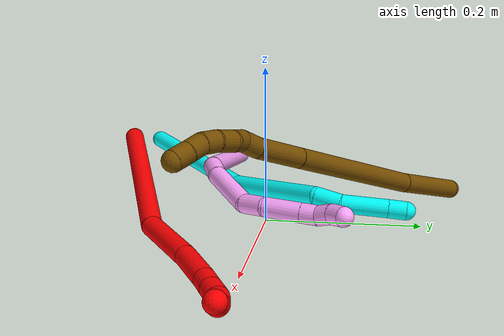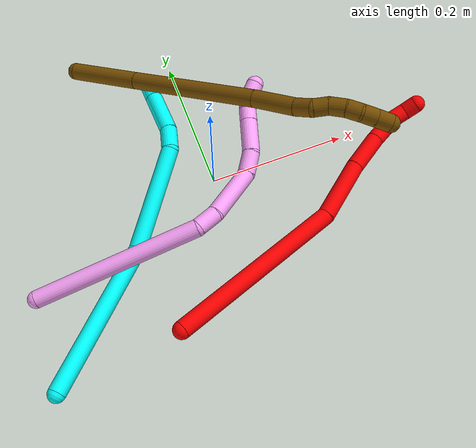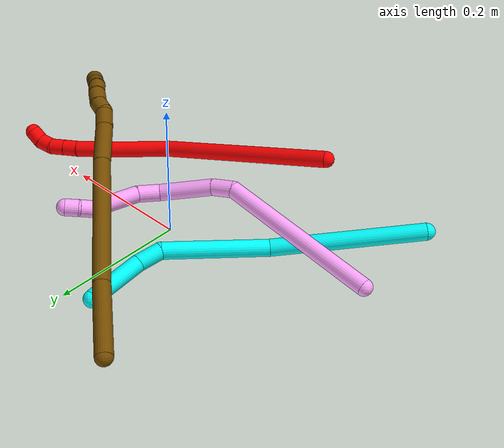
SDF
<sdf version="1.7">
 <world name="default">
  <model name="2">
   <static>0</static>
   <link name="2">
    <collision name="collision-cylinder-e_1_1_4">
     <pose>0.065254 0.098574 -0.057438 -2.09839 0.519549 -0.866362</pose>
     <geometry><cylinder><radius>0.0125</radius><length>0.262861</length></cylinder></geometry>
     <surface>
      <friction><ode><mu>1.16</mu><mu2>1.16</mu2><slip1>0</slip1><slip2>0</slip2></ode></friction>
      <contact><ode><kp>1e+06</kp><kd>1</kd><max_vel>0</max_vel><min_depth>0.001</min_depth></ode></contact>
     </surface>
    </collision>
    <visual name="visual-cylinder-e_1_1_4">
     <pose>0.065254 0.098574 -0.057438 -2.09839 0.519549 -0.866362</pose>
     <geometry><cylinder><radius>0.0125</radius><length>0.262861</length></cylinder></geometry>
     <material><ambient>1 0 0 1</ambient></material>
    </visual>
    <collision name="collision-cylinder-e_2_4_5">
     <pose>0.148873 0.224107 -0.147189 -2.44626 0.411507 -1.04506</pose>
     <geometry><cylinder><radius>0.0125</radius><length>0.091833</length></cylinder></geometry>
     <surface>
      <friction><ode><mu>1.16</mu><mu2>1.16</mu2><slip1>0</slip1><slip2>0</slip2></ode></friction>
      <contact><ode><kp>1e+06</kp><kd>1</kd><max_vel>0</max_vel><min_depth>0.001</min_depth></ode></contact>
     </surface>
    </collision>
    <visual name="visual-cylinder-e_2_4_5">
     <pose>0.148873 0.224107 -0.147189 -2.44626 0.411507 -1.04506</pose>
     <geometry><cylinder><radius>0.0125</radius><length>0.091833</length></cylinder></geometry>
     <material><ambient>1 0 0 1</ambient></material>
    </visual>
    <collision name="collision-cylinder-e_3_5_6">
     <pose>0.179117 0.269653 -0.197678 -2.34503 0.428594 -0.954695</pose>
     <geometry><cylinder><radius>0.0125</radius><length>0.057162</length></cylinder></geometry>
     <surface>
      <friction><ode><mu>1.16</mu><mu2>1.16</mu2><slip1>0</slip1><slip2>0</slip2></ode></friction>
      <contact><ode><kp>1e+06</kp><kd>1</kd><max_vel>0</max_vel><min_depth>0.001</min_depth></ode></contact>
     </surface>
    </collision>
    <visual name="visual-cylinder-e_3_5_6">
     <pose>0.179117 0.269653 -0.197678 -2.34503 0.428594 -0.954695</pose>
     <geometry><cylinder><radius>0.0125</radius><length>0.057162</length></cylinder></geometry>
     <material><ambient>1 0 0 1</ambient></material>
    </visual>
    <collision name="collision-cylinder-e_4_6_7">
     <pose>0.195397 0.296234 -0.222456 -2.26111 0.401475 -0.815474</pose>
     <geometry><cylinder><radius>0.0125</radius><length>0.02253</length></cylinder></geometry>
     <surface>
      <friction><ode><mu>1.16</mu><mu2>1.16</mu2><slip1>0</slip1><slip2>0</slip2></ode></friction>
      <contact><ode><kp>1e+06</kp><kd>1</kd><max_vel>0</max_vel><min_depth>0.001</min_depth></ode></contact>
     </surface>
    </collision>
    <visual name="visual-cylinder-e_4_6_7">
     <pose>0.195397 0.296234 -0.222456 -2.26111 0.401475 -0.815474</pose>
     <geometry><cylinder><radius>0.0125</radius><length>0.02253</length></cylinder></geometry>
     <material><ambient>1 0 0 1</ambient></material>
    </visual>
    <collision name="collision-cylinder-e_5_7_8">
     <pose>0.204205 0.312219 -0.235958 -2.28309 0.395393 -0.825046</pose>
     <geometry><cylinder><radius>0.0125</radius><length>0.022878</length></cylinder></geometry>
     <surface>
      <friction><ode><mu>1.16</mu><mu2>1.16</mu2><slip1>0</slip1><slip2>0</slip2></ode></friction>
      <contact><ode><kp>1e+06</kp><kd>1</kd><max_vel>0</max_vel><min_depth>0.001</min_depth></ode></contact>
     </surface>
    </collision>
    <visual name="visual-cylinder-e_5_7_8">
     <pose>0.204205 0.312219 -0.235958 -2.28309 0.395393 -0.825046</pose>
     <geometry><cylinder><radius>0.0125</radius><length>0.022878</length></cylinder></geometry>
     <material><ambient>1 0 0 1</ambient></material>
    </visual>
    <collision name="collision-cylinder-e_6_8_9">
     <pose>0.211013 0.330186 -0.246814 -1.9483 0.220173 -0.322641</pose>
     <geometry><cylinder><radius>0.0125</radius><length>0.021998</length></cylinder></geometry>
     <surface>
      <friction><ode><mu>1.16</mu><mu2>1.16</mu2><slip1>0</slip1><slip2>0</slip2></ode></friction>
      <contact><ode><kp>1e+06</kp><kd>1</kd><max_vel>0</max_vel><min_depth>0.001</min_depth></ode></contact>
     </surface>
    </collision>
    <visual name="visual-cylinder-e_6_8_9">
     <pose>0.211013 0.330186 -0.246814 -1.9483 0.220173 -0.322641</pose>
     <geometry><cylinder><radius>0.0125</radius><length>0.021998</length></cylinder></geometry>
     <material><ambient>1 0 0 1</ambient></material>
    </visual>
    <collision name="collision-cylinder-e_7_9_2">
     <pose>0.211063 0.349819 -0.253734 -1.8686 -0.228797 0.308446</pose>
     <geometry><cylinder><radius>0.0125</radius><length>0.02074</length></cylinder></geometry>
     <surface>
      <friction><ode><mu>1.16</mu><mu2>1.16</mu2><slip1>0</slip1><slip2>0</slip2></ode></friction>
      <contact><ode><kp>1e+06</kp><kd>1</kd><max_vel>0</max_vel><min_depth>0.001</min_depth></ode></contact>
     </surface>
    </collision>
    <visual name="visual-cylinder-e_7_9_2">
     <pose>0.211063 0.349819 -0.253734 -1.8686 -0.228797 0.308446</pose>
     <geometry><cylinder><radius>0.0125</radius><length>0.02074</length></cylinder></geometry>
     <material><ambient>1 0 0 1</ambient></material>
    </visual>
    <collision name="collision-sphere-2">
     <pose>0.208711 0.359474 -0.256697 0 -0 0</pose>
     <geometry><sphere><radius>0.0125</radius></sphere></geometry>
     <surface>
      <friction><ode><mu>1.16</mu><mu2>1.16</mu2><slip1>0</slip1><slip2>0</slip2></ode></friction>
      <contact><ode><kp>1e+06</kp><kd>1</kd><max_vel>0</max_vel><min_depth>0.001</min_depth></ode></contact>
     </surface>
    </collision>
    <visual name="visual-sphere-2">
     <pose>0.208711 0.359474 -0.256697 0 -0 0</pose>
     <geometry><sphere><radius>0.0125</radius></sphere></geometry>
     <material><ambient>1 0 0 1</ambient></material>
    </visual>
    <collision name="collision-sphere-9">
     <pose>0.213415 0.340163 -0.25077 0 -0 0</pose>
     <geometry><sphere><radius>0.0125</radius></sphere></geometry>
     <surface>
      <friction><ode><mu>1.16</mu><mu2>1.16</mu2><slip1>0</slip1><slip2>0</slip2></ode></friction>
      <contact><ode><kp>1e+06</kp><kd>1</kd><max_vel>0</max_vel><min_depth>0.001</min_depth></ode></contact>
     </surface>
    </collision>
    <visual name="visual-sphere-9">
     <pose>0.213415 0.340163 -0.25077 0 -0 0</pose>
     <geometry><sphere><radius>0.0125</radius></sphere></geometry>
     <material><ambient>1 0 0 1</ambient></material>
    </visual>
    <collision name="collision-sphere-4">
     <pose>0.130507 0.197147 -0.114876 0 -0 0</pose>
     <geometry><sphere><radius>0.0125</radius></sphere></geometry>
     <surface>
      <friction><ode><mu>1.16</mu><mu2>1.16</mu2><slip1>0</slip1><slip2>0</slip2></ode></friction>
      <contact><ode><kp>1e+06</kp><kd>1</kd><max_vel>0</max_vel><min_depth>0.001</min_depth></ode></contact>
     </surface>
    </collision>
    <visual name="visual-sphere-4">
     <pose>0.130507 0.197147 -0.114876 0 -0 0</pose>
     <geometry><sphere><radius>0.0125</radius></sphere></geometry>
     <material><ambient>1 0 0 1</ambient></material>
    </visual>
    <collision name="collision-sphere-1">
     <geometry><sphere><radius>0.0125</radius></sphere></geometry>
     <surface>
      <friction><ode><mu>1.16</mu><mu2>1.16</mu2><slip1>0</slip1><slip2>0</slip2></ode></friction>
      <contact><ode><kp>1e+06</kp><kd>1</kd><max_vel>0</max_vel><min_depth>0.001</min_depth></ode></contact>
     </surface>
    </collision>
    <visual name="visual-sphere-1">
     <geometry><sphere><radius>0.0125</radius></sphere></geometry>
     <material><ambient>1 0 0 1</ambient></material>
    </visual>
    <collision name="collision-sphere-8">
     <pose>0.208611 0.320208 -0.242858 0 -0 0</pose>
     <geometry><sphere><radius>0.0125</radius></sphere></geometry>
     <surface>
      <friction><ode><mu>1.16</mu><mu2>1.16</mu2><slip1>0</slip1><slip2>0</slip2></ode></friction>
      <contact><ode><kp>1e+06</kp><kd>1</kd><max_vel>0</max_vel><min_depth>0.001</min_depth></ode></contact>
     </surface>
    </collision>
    <visual name="visual-sphere-8">
     <pose>0.208611 0.320208 -0.242858 0 -0 0</pose>
     <geometry><sphere><radius>0.0125</radius></sphere></geometry>
     <material><ambient>1 0 0 1</ambient></material>
    </visual>
    <collision name="collision-sphere-5">
     <pose>0.167239 0.251067 -0.179503 0 -0 0</pose>
     <geometry><sphere><radius>0.0125</radius></sphere></geometry>
     <surface>
      <friction><ode><mu>1.16</mu><mu2>1.16</mu2><slip1>0</slip1><slip2>0</slip2></ode></friction>
      <contact><ode><kp>1e+06</kp><kd>1</kd><max_vel>0</max_vel><min_depth>0.001</min_depth></ode></contact>
     </surface>
    </collision>
    <visual name="visual-sphere-5">
     <pose>0.167239 0.251067 -0.179503 0 -0 0</pose>
     <geometry><sphere><radius>0.0125</radius></sphere></geometry>
     <material><ambient>1 0 0 1</ambient></material>
    </visual>
    <collision name="collision-sphere-6">
     <pose>0.190995 0.288239 -0.215854 0 -0 0</pose>
     <geometry><sphere><radius>0.0125</radius></sphere></geometry>
     <surface>
      <friction><ode><mu>1.16</mu><mu2>1.16</mu2><slip1>0</slip1><slip2>0</slip2></ode></friction>
      <contact><ode><kp>1e+06</kp><kd>1</kd><max_vel>0</max_vel><min_depth>0.001</min_depth></ode></contact>
     </surface>
    </collision>
    <visual name="visual-sphere-6">
     <pose>0.190995 0.288239 -0.215854 0 -0 0</pose>
     <geometry><sphere><radius>0.0125</radius></sphere></geometry>
     <material><ambient>1 0 0 1</ambient></material>
    </visual>
    <collision name="collision-sphere-7">
     <pose>0.199799 0.304229 -0.229059 0 -0 0</pose>
     <geometry><sphere><radius>0.0125</radius></sphere></geometry>
     <surface>
      <friction><ode><mu>1.16</mu><mu2>1.16</mu2><slip1>0</slip1><slip2>0</slip2></ode></friction>
      <contact><ode><kp>1e+06</kp><kd>1</kd><max_vel>0</max_vel><min_depth>0.001</min_depth></ode></contact>
     </surface>
    </collision>
    <visual name="visual-sphere-7">
     <pose>0.199799 0.304229 -0.229059 0 -0 0</pose>
     <geometry><sphere><radius>0.0125</radius></sphere></geometry>
     <material><ambient>1 0 0 1</ambient></material>
    </visual>
    <inertial>
     <pose>0.118312 0.180482 -0.122033 0 -0 0</pose>
     <mass>0.5</mass>
     <inertia>
      <ixx>-0.000159</ixx>
      <ixy>0</ixy>
      <ixz>0</ixz>
      <iyy>-0.001064</iyy>
      <iyz>0</iyz>
      <izz>-0.002013</izz>
     </inertia>
    </inertial>
   </link>
   <pose>-0.116721 -0.208303 0.078136 2.24653 1.23374 0.493743</pose>
  </model>
  <model name="3">
   <static>0</static>
   <link name="3">
    <collision name="collision-cylinder-e_1_1_4">
     <pose>-0.010333 0.005504 -0.11041 -3.09178 -0.093197 2.16032</pose>
     <geometry><cylinder><radius>0.0125</radius><length>0.222058</length></cylinder></geometry>
     <surface>
      <friction><ode><mu>1.16</mu><mu2>1.16</mu2><slip1>0</slip1><slip2>0</slip2></ode></friction>
      <contact><ode><kp>1e+06</kp><kd>1</kd><max_vel>0</max_vel><min_depth>0.001</min_depth></ode></contact>
     </surface>
    </collision>
    <visual name="visual-cylinder-e_1_1_4">
     <pose>-0.010333 0.005504 -0.11041 -3.09178 -0.093197 2.16032</pose>
     <geometry><cylinder><radius>0.0125</radius><length>0.222058</length></cylinder></geometry>
     <material><ambient>0.003922 1 0.996078 1</ambient></material>
    </visual>
    <collision name="collision-cylinder-e_2_4_5">
     <pose>-0.00787 0.016282 -0.297161 -3.07263 0.165671 -2.35402</pose>
     <geometry><cylinder><radius>0.0125</radius><length>0.155169</length></cylinder></geometry>
     <surface>
      <friction><ode><mu>1.16</mu><mu2>1.16</mu2><slip1>0</slip1><slip2>0</slip2></ode></friction>
      <contact><ode><kp>1e+06</kp><kd>1</kd><max_vel>0</max_vel><min_depth>0.001</min_depth></ode></contact>
     </surface>
    </collision>
    <visual name="visual-cylinder-e_2_4_5">
     <pose>-0.00787 0.016282 -0.297161 -3.07263 0.165671 -2.35402</pose>
     <geometry><cylinder><radius>0.0125</radius><length>0.155169</length></cylinder></geometry>
     <material><ambient>0.003922 1 0.996078 1</ambient></material>
    </visual>
    <collision name="collision-cylinder-e_3_5_6">
     <pose>0.006607 0.031139 -0.388984 -2.5873 0.092164 -0.321422</pose>
     <geometry><cylinder><radius>0.0125</radius><length>0.036575</length></cylinder></geometry>
     <surface>
      <friction><ode><mu>1.16</mu><mu2>1.16</mu2><slip1>0</slip1><slip2>0</slip2></ode></friction>
      <contact><ode><kp>1e+06</kp><kd>1</kd><max_vel>0</max_vel><min_depth>0.001</min_depth></ode></contact>
     </surface>
    </collision>
    <visual name="visual-cylinder-e_3_5_6">
     <pose>0.006607 0.031139 -0.388984 -2.5873 0.092164 -0.321422</pose>
     <geometry><cylinder><radius>0.0125</radius><length>0.036575</length></cylinder></geometry>
     <material><ambient>0.003922 1 0.996078 1</ambient></material>
    </visual>
    <collision name="collision-cylinder-e_4_6_7">
     <pose>0.017482 0.061595 -0.425555 -2.36135 0.300431 -0.70539</pose>
     <geometry><cylinder><radius>0.0125</radius><length>0.062121</length></cylinder></geometry>
     <surface>
      <friction><ode><mu>1.16</mu><mu2>1.16</mu2><slip1>0</slip1><slip2>0</slip2></ode></friction>
      <contact><ode><kp>1e+06</kp><kd>1</kd><max_vel>0</max_vel><min_depth>0.001</min_depth></ode></contact>
     </surface>
    </collision>
    <visual name="visual-cylinder-e_4_6_7">
     <pose>0.017482 0.061595 -0.425555 -2.36135 0.300431 -0.70539</pose>
     <geometry><cylinder><radius>0.0125</radius><length>0.062121</length></cylinder></geometry>
     <material><ambient>0.003922 1 0.996078 1</ambient></material>
    </visual>
    <collision name="collision-cylinder-e_5_7_2">
     <pose>0.030039 0.090591 -0.454863 -2.36202 0.283255 -0.668143</pose>
     <geometry><cylinder><radius>0.0125</radius><length>0.024077</length></cylinder></geometry>
     <surface>
      <friction><ode><mu>1.16</mu><mu2>1.16</mu2><slip1>0</slip1><slip2>0</slip2></ode></friction>
      <contact><ode><kp>1e+06</kp><kd>1</kd><max_vel>0</max_vel><min_depth>0.001</min_depth></ode></contact>
     </surface>
    </collision>
    <visual name="visual-cylinder-e_5_7_2">
     <pose>0.030039 0.090591 -0.454863 -2.36202 0.283255 -0.668143</pose>
     <geometry><cylinder><radius>0.0125</radius><length>0.024077</length></cylinder></geometry>
     <material><ambient>0.003922 1 0.996078 1</ambient></material>
    </visual>
    <collision name="collision-sphere-2">
     <pose>0.033403 0.098717 -0.463084 0 -0 0</pose>
     <geometry><sphere><radius>0.0125</radius></sphere></geometry>
     <surface>
      <friction><ode><mu>1.16</mu><mu2>1.16</mu2><slip1>0</slip1><slip2>0</slip2></ode></friction>
      <contact><ode><kp>1e+06</kp><kd>1</kd><max_vel>0</max_vel><min_depth>0.001</min_depth></ode></contact>
     </surface>
    </collision>
    <visual name="visual-sphere-2">
     <pose>0.033403 0.098717 -0.463084 0 -0 0</pose>
     <geometry><sphere><radius>0.0125</radius></sphere></geometry>
     <material><ambient>0.003922 1 0.996078 1</ambient></material>
    </visual>
    <collision name="collision-sphere-7">
     <pose>0.026674 0.082466 -0.446642 0 -0 0</pose>
     <geometry><sphere><radius>0.0125</radius></sphere></geometry>
     <surface>
      <friction><ode><mu>1.16</mu><mu2>1.16</mu2><slip1>0</slip1><slip2>0</slip2></ode></friction>
      <contact><ode><kp>1e+06</kp><kd>1</kd><max_vel>0</max_vel><min_depth>0.001</min_depth></ode></contact>
     </surface>
    </collision>
    <visual name="visual-sphere-7">
     <pose>0.026674 0.082466 -0.446642 0 -0 0</pose>
     <geometry><sphere><radius>0.0125</radius></sphere></geometry>
     <material><ambient>0.003922 1 0.996078 1</ambient></material>
    </visual>
    <collision name="collision-sphere-6">
     <pose>0.008291 0.040724 -0.404468 0 -0 0</pose>
     <geometry><sphere><radius>0.0125</radius></sphere></geometry>
     <surface>
      <friction><ode><mu>1.16</mu><mu2>1.16</mu2><slip1>0</slip1><slip2>0</slip2></ode></friction>
      <contact><ode><kp>1e+06</kp><kd>1</kd><max_vel>0</max_vel><min_depth>0.001</min_depth></ode></contact>
     </surface>
    </collision>
    <visual name="visual-sphere-6">
     <pose>0.008291 0.040724 -0.404468 0 -0 0</pose>
     <geometry><sphere><radius>0.0125</radius></sphere></geometry>
     <material><ambient>0.003922 1 0.996078 1</ambient></material>
    </visual>
    <collision name="collision-sphere-5">
     <pose>0.004924 0.021555 -0.373501 0 -0 0</pose>
     <geometry><sphere><radius>0.0125</radius></sphere></geometry>
     <surface>
      <friction><ode><mu>1.16</mu><mu2>1.16</mu2><slip1>0</slip1><slip2>0</slip2></ode></friction>
      <contact><ode><kp>1e+06</kp><kd>1</kd><max_vel>0</max_vel><min_depth>0.001</min_depth></ode></contact>
     </surface>
    </collision>
    <visual name="visual-sphere-5">
     <pose>0.004924 0.021555 -0.373501 0 -0 0</pose>
     <geometry><sphere><radius>0.0125</radius></sphere></geometry>
     <material><ambient>0.003922 1 0.996078 1</ambient></material>
    </visual>
    <collision name="collision-sphere-1">
     <geometry><sphere><radius>0.0125</radius></sphere></geometry>
     <surface>
      <friction><ode><mu>1.16</mu><mu2>1.16</mu2><slip1>0</slip1><slip2>0</slip2></ode></friction>
      <contact><ode><kp>1e+06</kp><kd>1</kd><max_vel>0</max_vel><min_depth>0.001</min_depth></ode></contact>
     </surface>
    </collision>
    <visual name="visual-sphere-1">
     <geometry><sphere><radius>0.0125</radius></sphere></geometry>
     <material><ambient>0.003922 1 0.996078 1</ambient></material>
    </visual>
    <collision name="collision-sphere-4">
     <pose>-0.020665 0.011009 -0.22082 0 -0 0</pose>
     <geometry><sphere><radius>0.0125</radius></sphere></geometry>
     <surface>
      <friction><ode><mu>1.16</mu><mu2>1.16</mu2><slip1>0</slip1><slip2>0</slip2></ode></friction>
      <contact><ode><kp>1e+06</kp><kd>1</kd><max_vel>0</max_vel><min_depth>0.001</min_depth></ode></contact>
     </surface>
    </collision>
    <visual name="visual-sphere-4">
     <pose>-0.020665 0.011009 -0.22082 0 -0 0</pose>
     <geometry><sphere><radius>0.0125</radius></sphere></geometry>
     <material><ambient>0.003922 1 0.996078 1</ambient></material>
    </visual>
    <inertial>
     <pose>-0.002929 0.02179 -0.244484 0 -0 0</pose>
     <mass>0.5</mass>
     <inertia>
      <ixx>-0.000181</ixx>
      <ixy>0</ixy>
      <ixz>0</ixz>
      <iyy>0.001258</iyy>
      <iyz>0</iyz>
      <izz>-9.7e-05</izz>
     </inertia>
    </inertial>
   </link>
   <pose>-0.292499 -0.2192 0.033283 -1.54518 -1.05446 2.33849</pose>
  </model>
  <model name="4">
   <static>0</static>
   <link name="4">
    <collision name="collision-cylinder-e_1_1_4">
     <pose>0.086852 0.013833 0.08241 -0.166301 0.804699 -0.070906</pose>
     <geometry><cylinder><radius>0.0125</radius><length>0.241049</length></cylinder></geometry>
     <surface>
      <friction><ode><mu>1.16</mu><mu2>1.16</mu2><slip1>0</slip1><slip2>0</slip2></ode></friction>
      <contact><ode><kp>1e+06</kp><kd>1</kd><max_vel>0</max_vel><min_depth>0.001</min_depth></ode></contact>
     </surface>
    </collision>
    <visual name="visual-cylinder-e_1_1_4">
     <pose>0.086852 0.013833 0.08241 -0.166301 0.804699 -0.070906</pose>
     <geometry><cylinder><radius>0.0125</radius><length>0.241049</length></cylinder></geometry>
     <material><ambient>1 0.65098 0.996078 1</ambient></material>
    </visual>
    <collision name="collision-cylinder-e_2_4_5">
     <pose>0.1894 0.028433 0.169299 -0.169786 1.28897 -0.127735</pose>
     <geometry><cylinder><radius>0.0125</radius><length>0.032679</length></cylinder></geometry>
     <surface>
      <friction><ode><mu>1.16</mu><mu2>1.16</mu2><slip1>0</slip1><slip2>0</slip2></ode></friction>
      <contact><ode><kp>1e+06</kp><kd>1</kd><max_vel>0</max_vel><min_depth>0.001</min_depth></ode></contact>
     </surface>
    </collision>
    <visual name="visual-cylinder-e_2_4_5">
     <pose>0.1894 0.028433 0.169299 -0.169786 1.28897 -0.127735</pose>
     <geometry><cylinder><radius>0.0125</radius><length>0.032679</length></cylinder></geometry>
     <material><ambient>1 0.65098 0.996078 1</ambient></material>
    </visual>
    <collision name="collision-cylinder-e_3_5_6">
     <pose>0.245219 0.033088 0.174517 -1.38279 1.4725 -1.2871</pose>
     <geometry><cylinder><radius>0.0125</radius><length>0.080638</length></cylinder></geometry>
     <surface>
      <friction><ode><mu>1.16</mu><mu2>1.16</mu2><slip1>0</slip1><slip2>0</slip2></ode></friction>
      <contact><ode><kp>1e+06</kp><kd>1</kd><max_vel>0</max_vel><min_depth>0.001</min_depth></ode></contact>
     </surface>
    </collision>
    <visual name="visual-cylinder-e_3_5_6">
     <pose>0.245219 0.033088 0.174517 -1.38279 1.4725 -1.2871</pose>
     <geometry><cylinder><radius>0.0125</radius><length>0.080638</length></cylinder></geometry>
     <material><ambient>1 0.65098 0.996078 1</ambient></material>
    </visual>
    <collision name="collision-cylinder-e_4_6_7">
     <pose>0.299981 0.045377 0.172518 -1.88592 1.02764 -1.32186</pose>
     <geometry><cylinder><radius>0.0125</radius><length>0.034196</length></cylinder></geometry>
     <surface>
      <friction><ode><mu>1.16</mu><mu2>1.16</mu2><slip1>0</slip1><slip2>0</slip2></ode></friction>
      <contact><ode><kp>1e+06</kp><kd>1</kd><max_vel>0</max_vel><min_depth>0.001</min_depth></ode></contact>
     </surface>
    </collision>
    <visual name="visual-cylinder-e_4_6_7">
     <pose>0.299981 0.045377 0.172518 -1.88592 1.02764 -1.32186</pose>
     <geometry><cylinder><radius>0.0125</radius><length>0.034196</length></cylinder></geometry>
     <material><ambient>1 0.65098 0.996078 1</ambient></material>
    </visual>
    <collision name="collision-cylinder-e_5_7_8">
     <pose>0.333522 0.065913 0.158742 -2.30888 0.856129 -1.60212</pose>
     <geometry><cylinder><radius>0.0125</radius><length>0.050057</length></cylinder></geometry>
     <surface>
      <friction><ode><mu>1.16</mu><mu2>1.16</mu2><slip1>0</slip1><slip2>0</slip2></ode></friction>
      <contact><ode><kp>1e+06</kp><kd>1</kd><max_vel>0</max_vel><min_depth>0.001</min_depth></ode></contact>
     </surface>
    </collision>
    <visual name="visual-cylinder-e_5_7_8">
     <pose>0.333522 0.065913 0.158742 -2.30888 0.856129 -1.60212</pose>
     <geometry><cylinder><radius>0.0125</radius><length>0.050057</length></cylinder></geometry>
     <material><ambient>1 0.65098 0.996078 1</ambient></material>
    </visual>
    <collision name="collision-cylinder-e_6_8_9">
     <pose>0.360367 0.083129 0.143048 -2.31259 0.855965 -1.60691</pose>
     <geometry><cylinder><radius>0.0125</radius><length>0.021029</length></cylinder></geometry>
     <surface>
      <friction><ode><mu>1.16</mu><mu2>1.16</mu2><slip1>0</slip1><slip2>0</slip2></ode></friction>
      <contact><ode><kp>1e+06</kp><kd>1</kd><max_vel>0</max_vel><min_depth>0.001</min_depth></ode></contact>
     </surface>
    </collision>
    <visual name="visual-cylinder-e_6_8_9">
     <pose>0.360367 0.083129 0.143048 -2.31259 0.855965 -1.60691</pose>
     <geometry><cylinder><radius>0.0125</radius><length>0.021029</length></cylinder></geometry>
     <material><ambient>1 0.65098 0.996078 1</ambient></material>
    </visual>
    <collision name="collision-cylinder-e_7_9_10">
     <pose>0.375736 0.094962 0.137293 -1.73212 0.826535 -0.952181</pose>
     <geometry><cylinder><radius>0.0125</radius><length>0.020196</length></cylinder></geometry>
     <surface>
      <friction><ode><mu>1.16</mu><mu2>1.16</mu2><slip1>0</slip1><slip2>0</slip2></ode></friction>
      <contact><ode><kp>1e+06</kp><kd>1</kd><max_vel>0</max_vel><min_depth>0.001</min_depth></ode></contact>
     </surface>
    </collision>
    <visual name="visual-cylinder-e_7_9_10">
     <pose>0.375736 0.094962 0.137293 -1.73212 0.826535 -0.952181</pose>
     <geometry><cylinder><radius>0.0125</radius><length>0.020196</length></cylinder></geometry>
     <material><ambient>1 0.65098 0.996078 1</ambient></material>
    </visual>
    <collision name="collision-cylinder-e_8_10_2">
     <pose>0.392235 0.106103 0.136342 -1.5371 1.11991 -1.0898</pose>
     <geometry><cylinder><radius>0.0125</radius><length>0.020156</length></cylinder></geometry>
     <surface>
      <friction><ode><mu>1.16</mu><mu2>1.16</mu2><slip1>0</slip1><slip2>0</slip2></ode></friction>
      <contact><ode><kp>1e+06</kp><kd>1</kd><max_vel>0</max_vel><min_depth>0.001</min_depth></ode></contact>
     </surface>
    </collision>
    <visual name="visual-cylinder-e_8_10_2">
     <pose>0.392235 0.106103 0.136342 -1.5371 1.11991 -1.0898</pose>
     <geometry><cylinder><radius>0.0125</radius><length>0.020156</length></cylinder></geometry>
     <material><ambient>1 0.65098 0.996078 1</ambient></material>
    </visual>
    <collision name="collision-sphere-2">
     <pose>0.401306 0.110492 0.13649 0 -0 0</pose>
     <geometry><sphere><radius>0.0125</radius></sphere></geometry>
     <surface>
      <friction><ode><mu>1.16</mu><mu2>1.16</mu2><slip1>0</slip1><slip2>0</slip2></ode></friction>
      <contact><ode><kp>1e+06</kp><kd>1</kd><max_vel>0</max_vel><min_depth>0.001</min_depth></ode></contact>
     </surface>
    </collision>
    <visual name="visual-sphere-2">
     <pose>0.401306 0.110492 0.13649 0 -0 0</pose>
     <geometry><sphere><radius>0.0125</radius></sphere></geometry>
     <material><ambient>1 0.65098 0.996078 1</ambient></material>
    </visual>
    <collision name="collision-sphere-10">
     <pose>0.383164 0.101714 0.136194 0 -0 0</pose>
     <geometry><sphere><radius>0.0125</radius></sphere></geometry>
     <surface>
      <friction><ode><mu>1.16</mu><mu2>1.16</mu2><slip1>0</slip1><slip2>0</slip2></ode></friction>
      <contact><ode><kp>1e+06</kp><kd>1</kd><max_vel>0</max_vel><min_depth>0.001</min_depth></ode></contact>
     </surface>
    </collision>
    <visual name="visual-sphere-10">
     <pose>0.383164 0.101714 0.136194 0 -0 0</pose>
     <geometry><sphere><radius>0.0125</radius></sphere></geometry>
     <material><ambient>1 0.65098 0.996078 1</ambient></material>
    </visual>
    <collision name="collision-sphere-9">
     <pose>0.368308 0.08821 0.138392 0 -0 0</pose>
     <geometry><sphere><radius>0.0125</radius></sphere></geometry>
     <surface>
      <friction><ode><mu>1.16</mu><mu2>1.16</mu2><slip1>0</slip1><slip2>0</slip2></ode></friction>
      <contact><ode><kp>1e+06</kp><kd>1</kd><max_vel>0</max_vel><min_depth>0.001</min_depth></ode></contact>
     </surface>
    </collision>
    <visual name="visual-sphere-9">
     <pose>0.368308 0.08821 0.138392 0 -0 0</pose>
     <geometry><sphere><radius>0.0125</radius></sphere></geometry>
     <material><ambient>1 0.65098 0.996078 1</ambient></material>
    </visual>
    <collision name="collision-sphere-4">
     <pose>0.173705 0.027665 0.16482 0 -0 0</pose>
     <geometry><sphere><radius>0.0125</radius></sphere></geometry>
     <surface>
      <friction><ode><mu>1.16</mu><mu2>1.16</mu2><slip1>0</slip1><slip2>0</slip2></ode></friction>
      <contact><ode><kp>1e+06</kp><kd>1</kd><max_vel>0</max_vel><min_depth>0.001</min_depth></ode></contact>
     </surface>
    </collision>
    <visual name="visual-sphere-4">
     <pose>0.173705 0.027665 0.16482 0 -0 0</pose>
     <geometry><sphere><radius>0.0125</radius></sphere></geometry>
     <material><ambient>1 0.65098 0.996078 1</ambient></material>
    </visual>
    <collision name="collision-sphere-1">
     <geometry><sphere><radius>0.0125</radius></sphere></geometry>
     <surface>
      <friction><ode><mu>1.16</mu><mu2>1.16</mu2><slip1>0</slip1><slip2>0</slip2></ode></friction>
      <contact><ode><kp>1e+06</kp><kd>1</kd><max_vel>0</max_vel><min_depth>0.001</min_depth></ode></contact>
     </surface>
    </collision>
    <visual name="visual-sphere-1">
     <geometry><sphere><radius>0.0125</radius></sphere></geometry>
     <material><ambient>1 0.65098 0.996078 1</ambient></material>
    </visual>
    <collision name="collision-sphere-8">
     <pose>0.352427 0.078047 0.147705 0 -0 0</pose>
     <geometry><sphere><radius>0.0125</radius></sphere></geometry>
     <surface>
      <friction><ode><mu>1.16</mu><mu2>1.16</mu2><slip1>0</slip1><slip2>0</slip2></ode></friction>
      <contact><ode><kp>1e+06</kp><kd>1</kd><max_vel>0</max_vel><min_depth>0.001</min_depth></ode></contact>
     </surface>
    </collision>
    <visual name="visual-sphere-8">
     <pose>0.352427 0.078047 0.147705 0 -0 0</pose>
     <geometry><sphere><radius>0.0125</radius></sphere></geometry>
     <material><ambient>1 0.65098 0.996078 1</ambient></material>
    </visual>
    <collision name="collision-sphere-5">
     <pose>0.205095 0.029201 0.173778 0 -0 0</pose>
     <geometry><sphere><radius>0.0125</radius></sphere></geometry>
     <surface>
      <friction><ode><mu>1.16</mu><mu2>1.16</mu2><slip1>0</slip1><slip2>0</slip2></ode></friction>
      <contact><ode><kp>1e+06</kp><kd>1</kd><max_vel>0</max_vel><min_depth>0.001</min_depth></ode></contact>
     </surface>
    </collision>
    <visual name="visual-sphere-5">
     <pose>0.205095 0.029201 0.173778 0 -0 0</pose>
     <geometry><sphere><radius>0.0125</radius></sphere></geometry>
     <material><ambient>1 0.65098 0.996078 1</ambient></material>
    </visual>
    <collision name="collision-sphere-6">
     <pose>0.285343 0.036975 0.175257 0 -0 0</pose>
     <geometry><sphere><radius>0.0125</radius></sphere></geometry>
     <surface>
      <friction><ode><mu>1.16</mu><mu2>1.16</mu2><slip1>0</slip1><slip2>0</slip2></ode></friction>
      <contact><ode><kp>1e+06</kp><kd>1</kd><max_vel>0</max_vel><min_depth>0.001</min_depth></ode></contact>
     </surface>
    </collision>
    <visual name="visual-sphere-6">
     <pose>0.285343 0.036975 0.175257 0 -0 0</pose>
     <geometry><sphere><radius>0.0125</radius></sphere></geometry>
     <material><ambient>1 0.65098 0.996078 1</ambient></material>
    </visual>
    <collision name="collision-sphere-7">
     <pose>0.314618 0.053779 0.169779 0 -0 0</pose>
     <geometry><sphere><radius>0.0125</radius></sphere></geometry>
     <surface>
      <friction><ode><mu>1.16</mu><mu2>1.16</mu2><slip1>0</slip1><slip2>0</slip2></ode></friction>
      <contact><ode><kp>1e+06</kp><kd>1</kd><max_vel>0</max_vel><min_depth>0.001</min_depth></ode></contact>
     </surface>
    </collision>
    <visual name="visual-sphere-7">
     <pose>0.314618 0.053779 0.169779 0 -0 0</pose>
     <geometry><sphere><radius>0.0125</radius></sphere></geometry>
     <material><ambient>1 0.65098 0.996078 1</ambient></material>
    </visual>
    <inertial>
     <pose>0.19385 0.035175 0.123689 0 -0 0</pose>
     <mass>0.5</mass>
     <inertia>
      <ixx>0.000773</ixx>
      <ixy>0</ixy>
      <ixz>0</ixz>
      <iyy>0.001165</iyy>
      <iyz>0</iyz>
      <izz>-0.001055</izz>
     </inertia>
    </inertial>
   </link>
   <pose>-0.287633 -0.083957 0.012459 1.07767 0.310254 0.608922</pose>
  </model>
  <model name="12">
   <static>0</static>
   <link name="12">
    <collision name="collision-cylinder-e_1_1_4">
     <pose>0.030594 -0.042472 -0.011755 1.84082 0.606851 0.780803</pose>
     <geometry><cylinder><radius>0.0125</radius><length>0.107295</length></cylinder></geometry>
     <surface>
      <friction><ode><mu>1.16</mu><mu2>1.16</mu2><slip1>0</slip1><slip2>0</slip2></ode></friction>
      <contact><ode><kp>1e+06</kp><kd>1</kd><max_vel>0</max_vel><min_depth>0.001</min_depth></ode></contact>
     </surface>
    </collision>
    <visual name="visual-cylinder-e_1_1_4">
     <pose>0.030594 -0.042472 -0.011755 1.84082 0.606851 0.780803</pose>
     <geometry><cylinder><radius>0.0125</radius><length>0.107295</length></cylinder></geometry>
     <material><ambient>0.466667 0.301961 0 1</ambient></material>
    </visual>
    <collision name="collision-cylinder-e_2_4_5">
     <pose>0.111866 -0.165856 -0.047444 1.85838 0.540856 0.710675</pose>
     <geometry><cylinder><radius>0.0125</radius><length>0.196854</length></cylinder></geometry>
     <surface>
      <friction><ode><mu>1.16</mu><mu2>1.16</mu2><slip1>0</slip1><slip2>0</slip2></ode></friction>
      <contact><ode><kp>1e+06</kp><kd>1</kd><max_vel>0</max_vel><min_depth>0.001</min_depth></ode></contact>
     </surface>
    </collision>
    <visual name="visual-cylinder-e_2_4_5">
     <pose>0.111866 -0.165856 -0.047444 1.85838 0.540856 0.710675</pose>
     <geometry><cylinder><radius>0.0125</radius><length>0.196854</length></cylinder></geometry>
     <material><ambient>0.466667 0.301961 0 1</ambient></material>
    </visual>
    <collision name="collision-cylinder-e_3_5_6">
     <pose>0.17839 -0.272621 -0.080647 1.91511 0.523363 0.727278</pose>
     <geometry><cylinder><radius>0.0125</radius><length>0.063416</length></cylinder></geometry>
     <surface>
      <friction><ode><mu>1.16</mu><mu2>1.16</mu2><slip1>0</slip1><slip2>0</slip2></ode></friction>
      <contact><ode><kp>1e+06</kp><kd>1</kd><max_vel>0</max_vel><min_depth>0.001</min_depth></ode></contact>
     </surface>
    </collision>
    <visual name="visual-cylinder-e_3_5_6">
     <pose>0.17839 -0.272621 -0.080647 1.91511 0.523363 0.727278</pose>
     <geometry><cylinder><radius>0.0125</radius><length>0.063416</length></cylinder></geometry>
     <material><ambient>0.466667 0.301961 0 1</ambient></material>
    </visual>
    <collision name="collision-cylinder-e_4_6_7">
     <pose>0.199333 -0.31016 -0.092724 1.80643 0.400948 0.504549</pose>
     <geometry><cylinder><radius>0.0125</radius><length>0.026109</length></cylinder></geometry>
     <surface>
      <friction><ode><mu>1.16</mu><mu2>1.16</mu2><slip1>0</slip1><slip2>0</slip2></ode></friction>
      <contact><ode><kp>1e+06</kp><kd>1</kd><max_vel>0</max_vel><min_depth>0.001</min_depth></ode></contact>
     </surface>
    </collision>
    <visual name="visual-cylinder-e_4_6_7">
     <pose>0.199333 -0.31016 -0.092724 1.80643 0.400948 0.504549</pose>
     <geometry><cylinder><radius>0.0125</radius><length>0.026109</length></cylinder></geometry>
     <material><ambient>0.466667 0.301961 0 1</ambient></material>
    </visual>
    <collision name="collision-cylinder-e_5_7_8">
     <pose>0.211458 -0.329339 -0.093892 1.35556 0.742023 0.60698</pose>
     <geometry><cylinder><radius>0.0125</radius><length>0.020806</length></cylinder></geometry>
     <surface>
      <friction><ode><mu>1.16</mu><mu2>1.16</mu2><slip1>0</slip1><slip2>0</slip2></ode></friction>
      <contact><ode><kp>1e+06</kp><kd>1</kd><max_vel>0</max_vel><min_depth>0.001</min_depth></ode></contact>
     </surface>
    </collision>
    <visual name="visual-cylinder-e_5_7_8">
     <pose>0.211458 -0.329339 -0.093892 1.35556 0.742023 0.60698</pose>
     <geometry><cylinder><radius>0.0125</radius><length>0.020806</length></cylinder></geometry>
     <material><ambient>0.466667 0.301961 0 1</ambient></material>
    </visual>
    <collision name="collision-cylinder-e_6_8_9">
     <pose>0.226141 -0.34546 -0.094095 1.78094 0.714447 0.864321</pose>
     <geometry><cylinder><radius>0.0125</radius><length>0.023359</length></cylinder></geometry>
     <surface>
      <friction><ode><mu>1.16</mu><mu2>1.16</mu2><slip1>0</slip1><slip2>0</slip2></ode></friction>
      <contact><ode><kp>1e+06</kp><kd>1</kd><max_vel>0</max_vel><min_depth>0.001</min_depth></ode></contact>
     </surface>
    </collision>
    <visual name="visual-cylinder-e_6_8_9">
     <pose>0.226141 -0.34546 -0.094095 1.78094 0.714447 0.864321</pose>
     <geometry><cylinder><radius>0.0125</radius><length>0.023359</length></cylinder></geometry>
     <material><ambient>0.466667 0.301961 0 1</ambient></material>
    </visual>
    <collision name="collision-cylinder-e_7_9_10">
     <pose>0.241335 -0.360255 -0.098544 1.97102 0.844748 1.19178</pose>
     <geometry><cylinder><radius>0.0125</radius><length>0.02017</length></cylinder></geometry>
     <surface>
      <friction><ode><mu>1.16</mu><mu2>1.16</mu2><slip1>0</slip1><slip2>0</slip2></ode></friction>
      <contact><ode><kp>1e+06</kp><kd>1</kd><max_vel>0</max_vel><min_depth>0.001</min_depth></ode></contact>
     </surface>
    </collision>
    <visual name="visual-cylinder-e_7_9_10">
     <pose>0.241335 -0.360255 -0.098544 1.97102 0.844748 1.19178</pose>
     <geometry><cylinder><radius>0.0125</radius><length>0.02017</length></cylinder></geometry>
     <material><ambient>0.466667 0.301961 0 1</ambient></material>
    </visual>
    <collision name="collision-cylinder-e_8_10_11">
     <pose>0.258233 -0.370247 -0.102522 1.91448 1.16108 1.49983</pose>
     <geometry><cylinder><radius>0.0125</radius><length>0.0204</length></cylinder></geometry>
     <surface>
      <friction><ode><mu>1.16</mu><mu2>1.16</mu2><slip1>0</slip1><slip2>0</slip2></ode></friction>
      <contact><ode><kp>1e+06</kp><kd>1</kd><max_vel>0</max_vel><min_depth>0.001</min_depth></ode></contact>
     </surface>
    </collision>
    <visual name="visual-cylinder-e_8_10_11">
     <pose>0.258233 -0.370247 -0.102522 1.91448 1.16108 1.49983</pose>
     <geometry><cylinder><radius>0.0125</radius><length>0.0204</length></cylinder></geometry>
     <material><ambient>0.466667 0.301961 0 1</ambient></material>
    </visual>
    <collision name="collision-cylinder-e_9_11_2">
     <pose>0.277411 -0.378205 -0.105615 1.96603 1.14307 1.53535</pose>
     <geometry><cylinder><radius>0.0125</radius><length>0.02159</length></cylinder></geometry>
     <surface>
      <friction><ode><mu>1.16</mu><mu2>1.16</mu2><slip1>0</slip1><slip2>0</slip2></ode></friction>
      <contact><ode><kp>1e+06</kp><kd>1</kd><max_vel>0</max_vel><min_depth>0.001</min_depth></ode></contact>
     </surface>
    </collision>
    <visual name="visual-cylinder-e_9_11_2">
     <pose>0.277411 -0.378205 -0.105615 1.96603 1.14307 1.53535</pose>
     <geometry><cylinder><radius>0.0125</radius><length>0.02159</length></cylinder></geometry>
     <material><ambient>0.466667 0.301961 0 1</ambient></material>
    </visual>
    <collision name="collision-sphere-2">
     <pose>0.287233 -0.382338 -0.107339 0 -0 0</pose>
     <geometry><sphere><radius>0.0125</radius></sphere></geometry>
     <surface>
      <friction><ode><mu>1.16</mu><mu2>1.16</mu2><slip1>0</slip1><slip2>0</slip2></ode></friction>
      <contact><ode><kp>1e+06</kp><kd>1</kd><max_vel>0</max_vel><min_depth>0.001</min_depth></ode></contact>
     </surface>
    </collision>
    <visual name="visual-sphere-2">
     <pose>0.287233 -0.382338 -0.107339 0 -0 0</pose>
     <geometry><sphere><radius>0.0125</radius></sphere></geometry>
     <material><ambient>0.466667 0.301961 0 1</ambient></material>
    </visual>
    <collision name="collision-sphere-11">
     <pose>0.267588 -0.374073 -0.103891 0 -0 0</pose>
     <geometry><sphere><radius>0.0125</radius></sphere></geometry>
     <surface>
      <friction><ode><mu>1.16</mu><mu2>1.16</mu2><slip1>0</slip1><slip2>0</slip2></ode></friction>
      <contact><ode><kp>1e+06</kp><kd>1</kd><max_vel>0</max_vel><min_depth>0.001</min_depth></ode></contact>
     </surface>
    </collision>
    <visual name="visual-sphere-11">
     <pose>0.267588 -0.374073 -0.103891 0 -0 0</pose>
     <geometry><sphere><radius>0.0125</radius></sphere></geometry>
     <material><ambient>0.466667 0.301961 0 1</ambient></material>
    </visual>
    <collision name="collision-sphere-10">
     <pose>0.248877 -0.366422 -0.101153 0 -0 0</pose>
     <geometry><sphere><radius>0.0125</radius></sphere></geometry>
     <surface>
      <friction><ode><mu>1.16</mu><mu2>1.16</mu2><slip1>0</slip1><slip2>0</slip2></ode></friction>
      <contact><ode><kp>1e+06</kp><kd>1</kd><max_vel>0</max_vel><min_depth>0.001</min_depth></ode></contact>
     </surface>
    </collision>
    <visual name="visual-sphere-10">
     <pose>0.248877 -0.366422 -0.101153 0 -0 0</pose>
     <geometry><sphere><radius>0.0125</radius></sphere></geometry>
     <material><ambient>0.466667 0.301961 0 1</ambient></material>
    </visual>
    <collision name="collision-sphere-9">
     <pose>0.233794 -0.354089 -0.095935 0 -0 0</pose>
     <geometry><sphere><radius>0.0125</radius></sphere></geometry>
     <surface>
      <friction><ode><mu>1.16</mu><mu2>1.16</mu2><slip1>0</slip1><slip2>0</slip2></ode></friction>
      <contact><ode><kp>1e+06</kp><kd>1</kd><max_vel>0</max_vel><min_depth>0.001</min_depth></ode></contact>
     </surface>
    </collision>
    <visual name="visual-sphere-9">
     <pose>0.233794 -0.354089 -0.095935 0 -0 0</pose>
     <geometry><sphere><radius>0.0125</radius></sphere></geometry>
     <material><ambient>0.466667 0.301961 0 1</ambient></material>
    </visual>
    <collision name="collision-sphere-4">
     <pose>0.061189 -0.084943 -0.023511 0 -0 0</pose>
     <geometry><sphere><radius>0.0125</radius></sphere></geometry>
     <surface>
      <friction><ode><mu>1.16</mu><mu2>1.16</mu2><slip1>0</slip1><slip2>0</slip2></ode></friction>
      <contact><ode><kp>1e+06</kp><kd>1</kd><max_vel>0</max_vel><min_depth>0.001</min_depth></ode></contact>
     </surface>
    </collision>
    <visual name="visual-sphere-4">
     <pose>0.061189 -0.084943 -0.023511 0 -0 0</pose>
     <geometry><sphere><radius>0.0125</radius></sphere></geometry>
     <material><ambient>0.466667 0.301961 0 1</ambient></material>
    </visual>
    <collision name="collision-sphere-1">
     <geometry><sphere><radius>0.0125</radius></sphere></geometry>
     <surface>
      <friction><ode><mu>1.16</mu><mu2>1.16</mu2><slip1>0</slip1><slip2>0</slip2></ode></friction>
      <contact><ode><kp>1e+06</kp><kd>1</kd><max_vel>0</max_vel><min_depth>0.001</min_depth></ode></contact>
     </surface>
    </collision>
    <visual name="visual-sphere-1">
     <geometry><sphere><radius>0.0125</radius></sphere></geometry>
     <material><ambient>0.466667 0.301961 0 1</ambient></material>
    </visual>
    <collision name="collision-sphere-8">
     <pose>0.218489 -0.33683 -0.092254 0 -0 0</pose>
     <geometry><sphere><radius>0.0125</radius></sphere></geometry>
     <surface>
      <friction><ode><mu>1.16</mu><mu2>1.16</mu2><slip1>0</slip1><slip2>0</slip2></ode></friction>
      <contact><ode><kp>1e+06</kp><kd>1</kd><max_vel>0</max_vel><min_depth>0.001</min_depth></ode></contact>
     </surface>
    </collision>
    <visual name="visual-sphere-8">
     <pose>0.218489 -0.33683 -0.092254 0 -0 0</pose>
     <geometry><sphere><radius>0.0125</radius></sphere></geometry>
     <material><ambient>0.466667 0.301961 0 1</ambient></material>
    </visual>
    <collision name="collision-sphere-5">
     <pose>0.162543 -0.246769 -0.071377 0 -0 0</pose>
     <geometry><sphere><radius>0.0125</radius></sphere></geometry>
     <surface>
      <friction><ode><mu>1.16</mu><mu2>1.16</mu2><slip1>0</slip1><slip2>0</slip2></ode></friction>
      <contact><ode><kp>1e+06</kp><kd>1</kd><max_vel>0</max_vel><min_depth>0.001</min_depth></ode></contact>
     </surface>
    </collision>
    <visual name="visual-sphere-5">
     <pose>0.162543 -0.246769 -0.071377 0 -0 0</pose>
     <geometry><sphere><radius>0.0125</radius></sphere></geometry>
     <material><ambient>0.466667 0.301961 0 1</ambient></material>
    </visual>
    <collision name="collision-sphere-6">
     <pose>0.194238 -0.298473 -0.089918 0 -0 0</pose>
     <geometry><sphere><radius>0.0125</radius></sphere></geometry>
     <surface>
      <friction><ode><mu>1.16</mu><mu2>1.16</mu2><slip1>0</slip1><slip2>0</slip2></ode></friction>
      <contact><ode><kp>1e+06</kp><kd>1</kd><max_vel>0</max_vel><min_depth>0.001</min_depth></ode></contact>
     </surface>
    </collision>
    <visual name="visual-sphere-6">
     <pose>0.194238 -0.298473 -0.089918 0 -0 0</pose>
     <geometry><sphere><radius>0.0125</radius></sphere></geometry>
     <material><ambient>0.466667 0.301961 0 1</ambient></material>
    </visual>
    <collision name="collision-sphere-7">
     <pose>0.204428 -0.321848 -0.09553 0 -0 0</pose>
     <geometry><sphere><radius>0.0125</radius></sphere></geometry>
     <surface>
      <friction><ode><mu>1.16</mu><mu2>1.16</mu2><slip1>0</slip1><slip2>0</slip2></ode></friction>
      <contact><ode><kp>1e+06</kp><kd>1</kd><max_vel>0</max_vel><min_depth>0.001</min_depth></ode></contact>
     </surface>
    </collision>
    <visual name="visual-sphere-7">
     <pose>0.204428 -0.321848 -0.09553 0 -0 0</pose>
     <geometry><sphere><radius>0.0125</radius></sphere></geometry>
     <material><ambient>0.466667 0.301961 0 1</ambient></material>
    </visual>
    <inertial>
     <pose>0.135256 -0.201 -0.057294 0 -0 0</pose>
     <mass>0.5</mass>
     <inertia>
      <ixx>0.000963</ixx>
      <ixy>0</ixy>
      <ixz>0</ixz>
      <iyy>0.000507</iyy>
      <iyz>0</iyz>
      <izz>0.00022</izz>
     </inertia>
    </inertial>
   </link>
   <pose>-0.135541 0.242983 0.012104 -1.50979 0.648303 -0.417945</pose>
  </model>
 </world>
</sdf>
